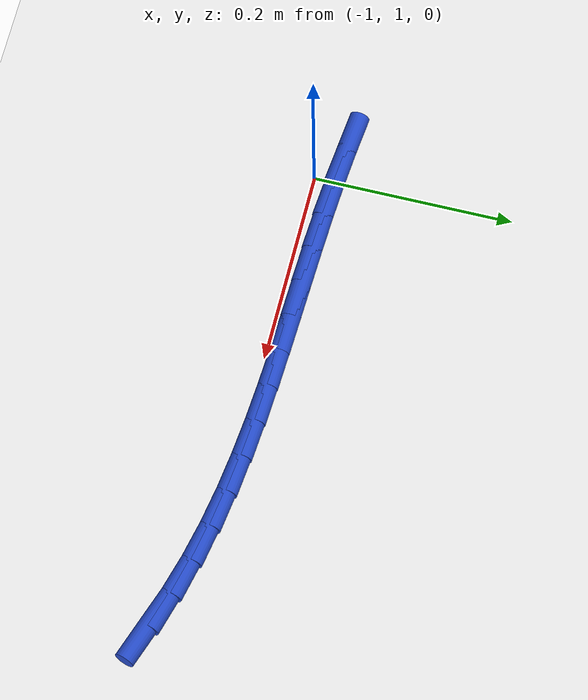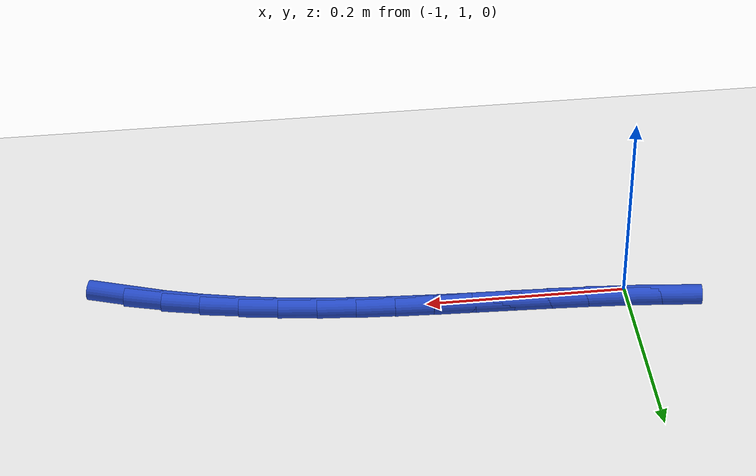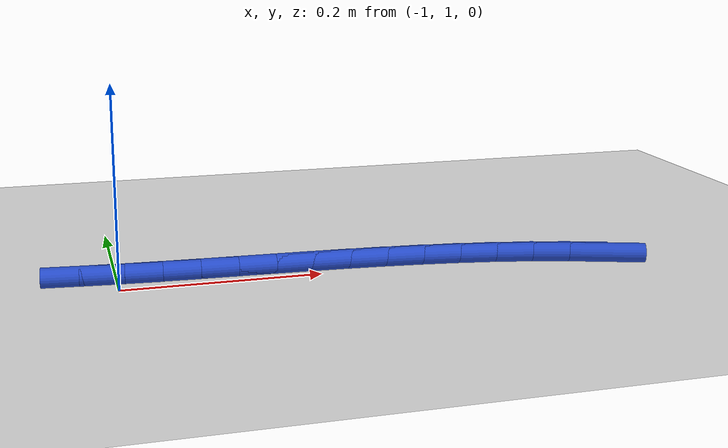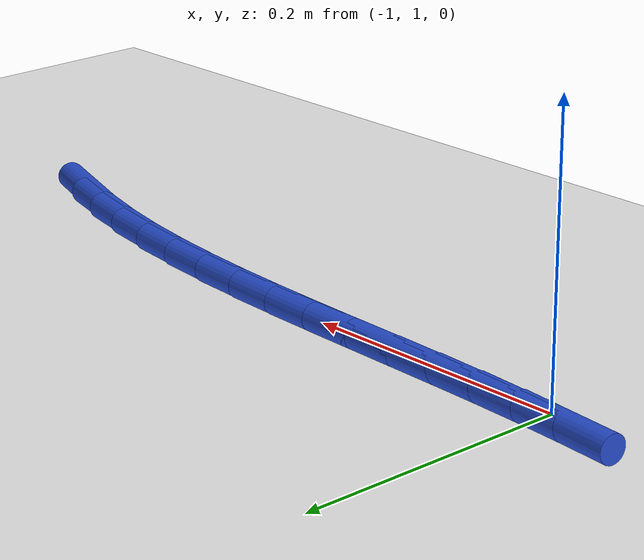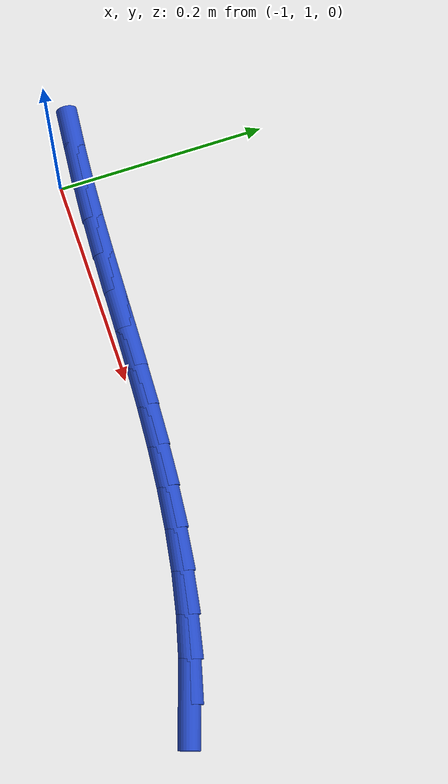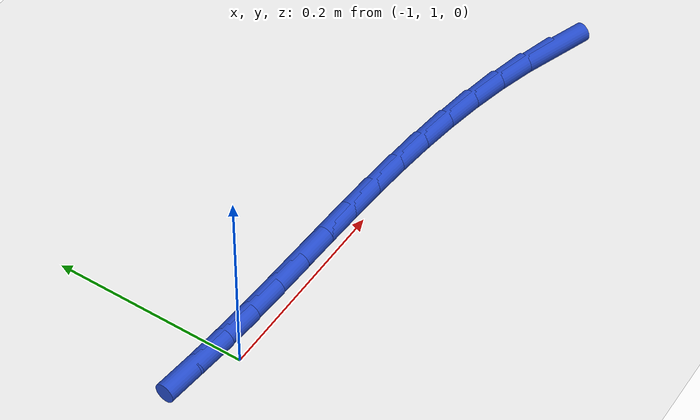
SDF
<sdf version="1.6">
 <world name="default">
  <model name="ground_plane">
   <static>1</static>
   <link name="link">
    <collision name="collision">
     <geometry><plane><normal>0 0 1</normal><size>100 100</size></plane></geometry>
     <surface><friction><ode><mu>100</mu><mu2>50</mu2></ode></friction></surface>
    </collision>
    <visual name="visual">
     <cast_shadows>0</cast_shadows>
     <geometry><plane><normal>0 0 1</normal><size>100 100</size></plane></geometry>
     <material>
      <script><uri>file://media/materials/scripts/gazebo.material</uri><name>Gazebo/WhiteGlow</name></script>
     </material>
    </visual>
   </link>
  </model>
  <model name="line">
   <link name="link_30">
    <pose>-0.5056549743800133 0.9632647080975247 0.01 0 1.57 -0.3280408990402076</pose>
    <collision name="collision">
     <geometry><cylinder><radius>0.01</radius><length>0.08</length></cylinder></geometry>
    </collision>
    <visual name="visual">
     <material>
      <script><name>Gazebo/Blue</name><uri>file://media/materials/scripts/gazebo.material</uri></script>
     </material>
     <geometry><cylinder><radius>0.01</radius><length>0.08</length></cylinder></geometry>
    </visual>
   </link>
   <link name="link_31">
    <pose>-0.5418543080608096 0.9755846946069876 0.01 0 1.57 -0.26750801333935326</pose>
    <collision name="collision">
     <geometry><cylinder><radius>0.01</radius><length>0.08</length></cylinder></geometry>
    </collision>
    <visual name="visual">
     <material>
      <script><name>Gazebo/Blue</name><uri>file://media/materials/scripts/gazebo.material</uri></script>
     </material>
     <geometry><cylinder><radius>0.01</radius><length>0.08</length></cylinder></geometry>
    </visual>
   </link>
   <link name="link_32">
    <pose>-0.5786785212308259 0.9856773688554341 0.01 0 1.57 -0.2140031497154433</pose>
    <collision name="collision">
     <geometry><cylinder><radius>0.01</radius><length>0.08</length></cylinder></geometry>
    </collision>
    <visual name="visual">
     <material>
      <script><name>Gazebo/Blue</name><uri>file://media/materials/scripts/gazebo.material</uri></script>
     </material>
     <geometry><cylinder><radius>0.01</radius><length>0.08</length></cylinder></geometry>
    </visual>
   </link>
   <link name="link_33">
    <pose>-0.6160253407426954 0.9937939924385889 0.01 0 1.57 -0.16766114630379586</pose>
    <collision name="collision">
     <geometry><cylinder><radius>0.01</radius><length>0.08</length></cylinder></geometry>
    </collision>
    <visual name="visual">
     <material>
      <script><name>Gazebo/Blue</name><uri>file://media/materials/scripts/gazebo.material</uri></script>
     </material>
     <geometry><cylinder><radius>0.01</radius><length>0.08</length></cylinder></geometry>
    </visual>
   </link>
   <link name="link_34">
    <pose>-0.6537925314790798 1.0001860899827402 0.01 0 1.57 -0.12844875463617564</pose>
    <collision name="collision">
     <geometry><cylinder><radius>0.01</radius><length>0.08</length></cylinder></geometry>
    </collision>
    <visual name="visual">
     <material>
      <script><name>Gazebo/Blue</name><uri>file://media/materials/scripts/gazebo.material</uri></script>
     </material>
     <geometry><cylinder><radius>0.01</radius><length>0.08</length></cylinder></geometry>
    </visual>
   </link>
   <link name="link_35">
    <pose>-0.6918778583226416 1.0051051861141758 0.01 0 1.57 -0.09624223592973855</pose>
    <collision name="collision">
     <geometry><cylinder><radius>0.01</radius><length>0.08</length></cylinder></geometry>
    </collision>
    <visual name="visual">
     <material>
      <script><name>Gazebo/Blue</name><uri>file://media/materials/scripts/gazebo.material</uri></script>
     </material>
     <geometry><cylinder><radius>0.01</radius><length>0.08</length></cylinder></geometry>
    </visual>
   </link>
   <link name="link_36">
    <pose>-0.7301790861560422 1.0088028054591833 0.01 0 1.57 -0.07088648814556454</pose>
    <collision name="collision">
     <geometry><cylinder><radius>0.01</radius><length>0.08</length></cylinder></geometry>
    </collision>
    <visual name="visual">
     <material>
      <script><name>Gazebo/Blue</name><uri>file://media/materials/scripts/gazebo.material</uri></script>
     </material>
     <geometry><cylinder><radius>0.01</radius><length>0.08</length></cylinder></geometry>
    </visual>
   </link>
   <link name="link_37">
    <pose>-0.7685939798619437 1.0115304726440508 0.01 0 1.57 -0.05224052936037292</pose>
    <collision name="collision">
     <geometry><cylinder><radius>0.01</radius><length>0.08</length></cylinder></geometry>
    </collision>
    <visual name="visual">
     <material>
      <script><name>Gazebo/Blue</name><uri>file://media/materials/scripts/gazebo.material</uri></script>
     </material>
     <geometry><cylinder><radius>0.01</radius><length>0.08</length></cylinder></geometry>
    </visual>
   </link>
   <link name="link_38">
    <pose>-0.8070203043230079 1.0135397122950667 0.01 0 1.57 -0.04021088989289936</pose>
    <collision name="collision">
     <geometry><cylinder><radius>0.01</radius><length>0.08</length></cylinder></geometry>
    </collision>
    <visual name="visual">
     <material>
      <script><name>Gazebo/Blue</name><uri>file://media/materials/scripts/gazebo.material</uri></script>
     </material>
     <geometry><cylinder><radius>0.01</radius><length>0.08</length></cylinder></geometry>
    </visual>
   </link>
   <link name="link_39">
    <pose>-0.8453558244218969 1.0150820490385184 0.01 0 1.57 -0.03477549139845413</pose>
    <collision name="collision">
     <geometry><cylinder><radius>0.01</radius><length>0.08</length></cylinder></geometry>
    </collision>
    <visual name="visual">
     <material>
      <script><name>Gazebo/Blue</name><uri>file://media/materials/scripts/gazebo.material</uri></script>
     </material>
     <geometry><cylinder><radius>0.01</radius><length>0.08</length></cylinder></geometry>
    </visual>
   </link>
   <link name="link_40">
    <pose>-0.8834983050412724 1.0164090075006937 0.01 0 1.57 -0.03600043501181921</pose>
    <collision name="collision">
     <geometry><cylinder><radius>0.01</radius><length>0.08</length></cylinder></geometry>
    </collision>
    <visual name="visual">
     <material>
      <script><name>Gazebo/Blue</name><uri>file://media/materials/scripts/gazebo.material</uri></script>
     </material>
     <geometry><cylinder><radius>0.01</radius><length>0.08</length></cylinder></geometry>
    </visual>
   </link>
   <link name="link_41">
    <pose>-0.9213455110637964 1.017772112307881 0.01 0 1.57 -0.04405130125781281</pose>
    <collision name="collision">
     <geometry><cylinder><radius>0.01</radius><length>0.08</length></cylinder></geometry>
    </collision>
    <visual name="visual">
     <material>
      <script><name>Gazebo/Blue</name><uri>file://media/materials/scripts/gazebo.material</uri></script>
     </material>
     <geometry><cylinder><radius>0.01</radius><length>0.08</length></cylinder></geometry>
    </visual>
   </link>
   <link name="link_42">
    <pose>-0.9587952073721308 1.0194228880863678 0.01 0 1.57 -0.0591958668253946</pose>
    <collision name="collision">
     <geometry><cylinder><radius>0.01</radius><length>0.08</length></cylinder></geometry>
    </collision>
    <visual name="visual">
     <material>
      <script><name>Gazebo/Blue</name><uri>file://media/materials/scripts/gazebo.material</uri></script>
     </material>
     <geometry><cylinder><radius>0.01</radius><length>0.08</length></cylinder></geometry>
    </visual>
   </link>
   <link name="link_43">
    <pose>-0.9957453442663211 1.021612741926129 0.01 0 1.57 -0.0795985463917148</pose>
    <collision name="collision">
     <geometry><cylinder><radius>0.01</radius><length>0.08</length></cylinder></geometry>
    </collision>
    <visual name="visual">
     <material>
      <script><name>Gazebo/Blue</name><uri>file://media/materials/scripts/gazebo.material</uri></script>
     </material>
     <geometry><cylinder><radius>0.01</radius><length>0.08</length></cylinder></geometry>
    </visual>
   </link>
   <link name="link_44">
    <pose>-1.0322072621542264 1.0245212027849324 0.01 0 1.57 -0.0992207175375797</pose>
    <collision name="collision">
     <geometry><cylinder><radius>0.01</radius><length>0.08</length></cylinder></geometry>
    </collision>
    <visual name="visual">
     <material>
      <script><name>Gazebo/Blue</name><uri>file://media/materials/scripts/gazebo.material</uri></script>
     </material>
     <geometry><cylinder><radius>0.01</radius><length>0.08</length></cylinder></geometry>
    </visual>
   </link>
  </model>
 </world>
</sdf>
